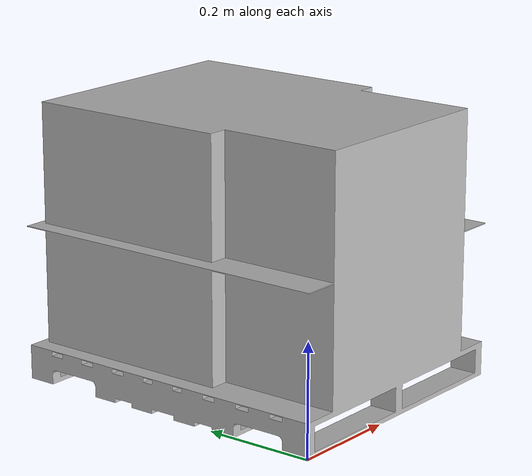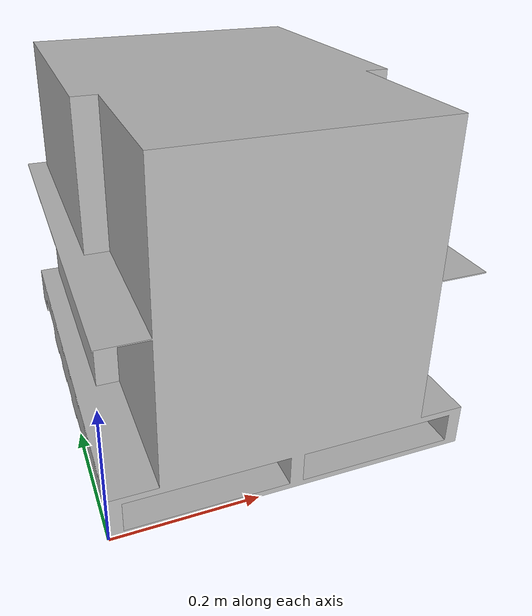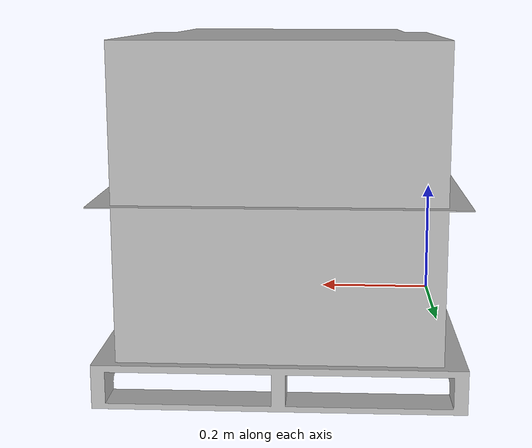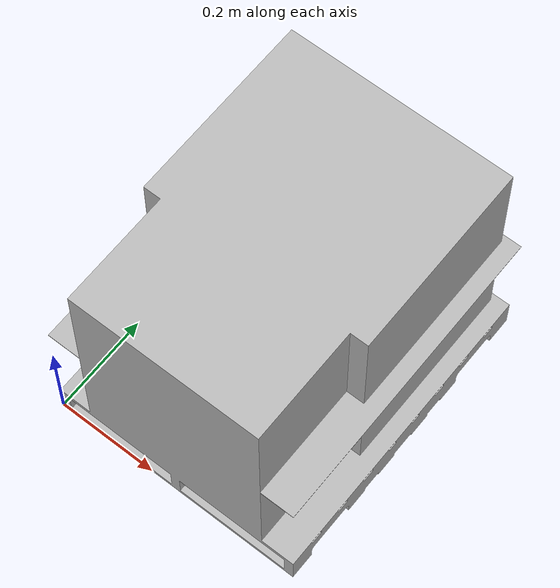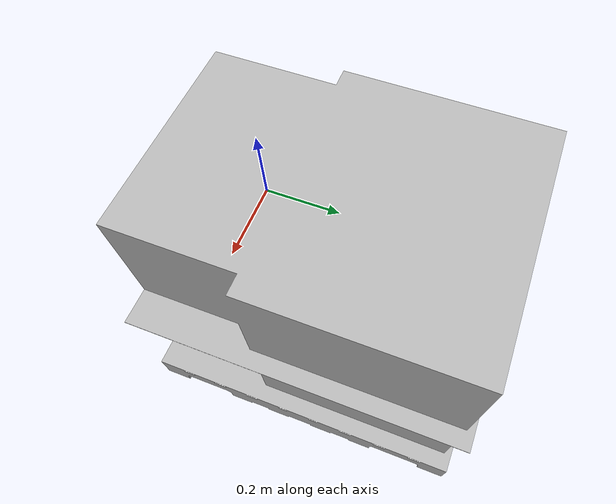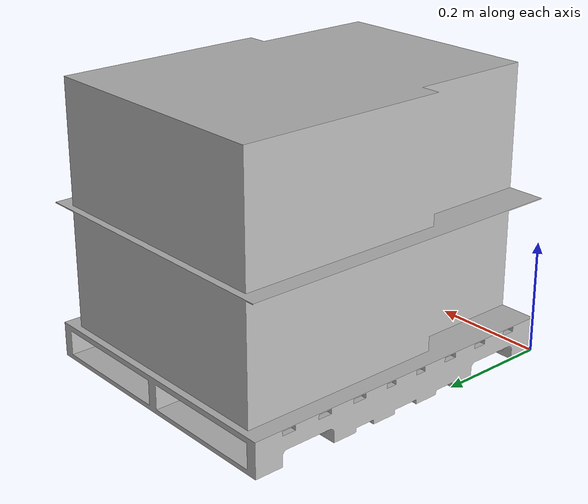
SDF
<?xml version="1.0" ?>
<sdf version="1.5">
  <model name="skid_udine_sealers">
    <static>true</static>
    <link name="skid_udine_sealers_link">
        <collision name="skid_udine_sealers_collision">
         <geometry>
            <mesh>
                <uri>model://skid_udine_sealers/meshes/model.dae</uri>
                <scale>0.5 0.5 0.5</scale>
            </mesh>
        </geometry>
      </collision>

      <visual name="skid_udine_sealers_mesh">
        <cast_shadows>true</cast_shadows>
        <geometry>
            <mesh>
                <uri>model://skid_udine_sealers/meshes/model.dae</uri>
                <scale>0.5 0.5 0.5</scale>
            </mesh>
        </geometry>
      </visual>
    </link>
  </model>
</sdf>
